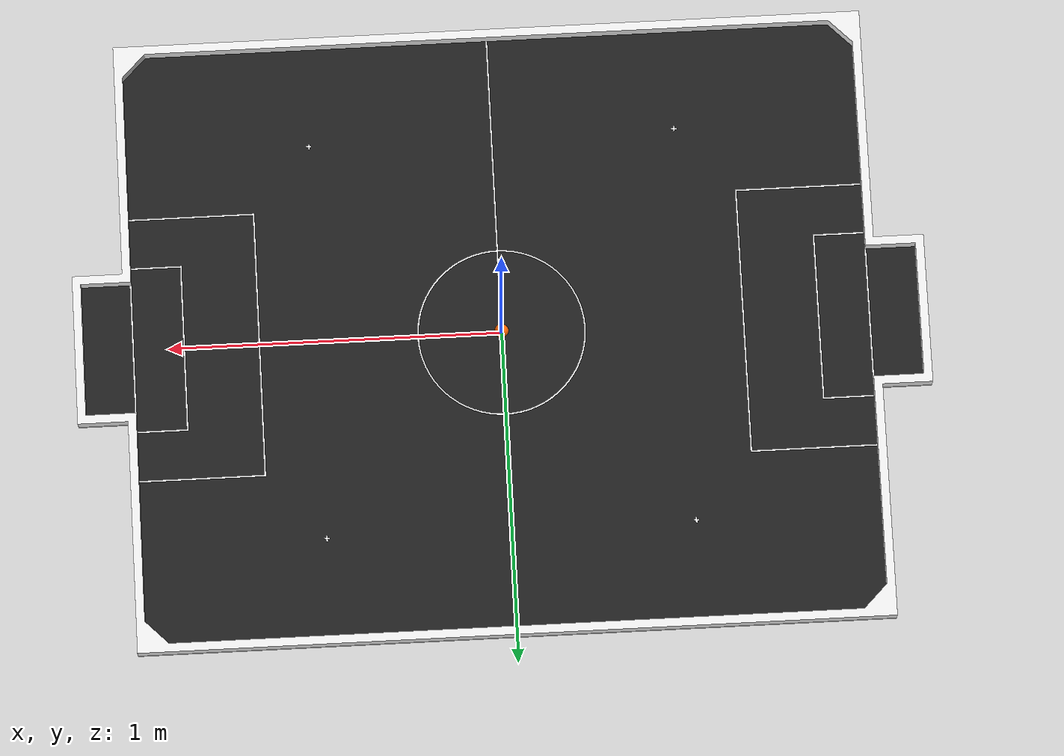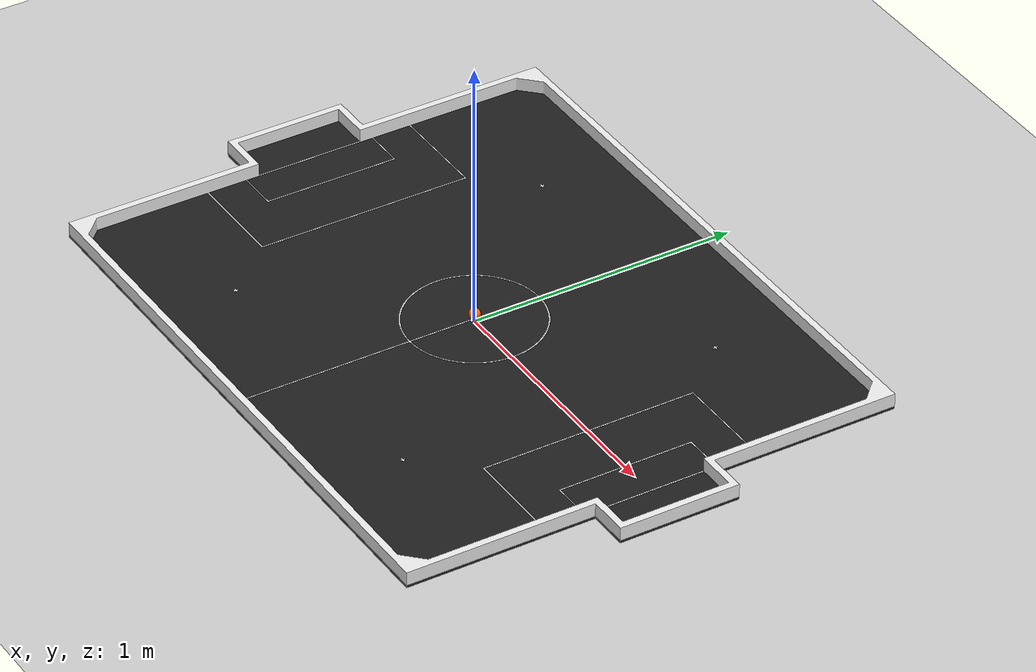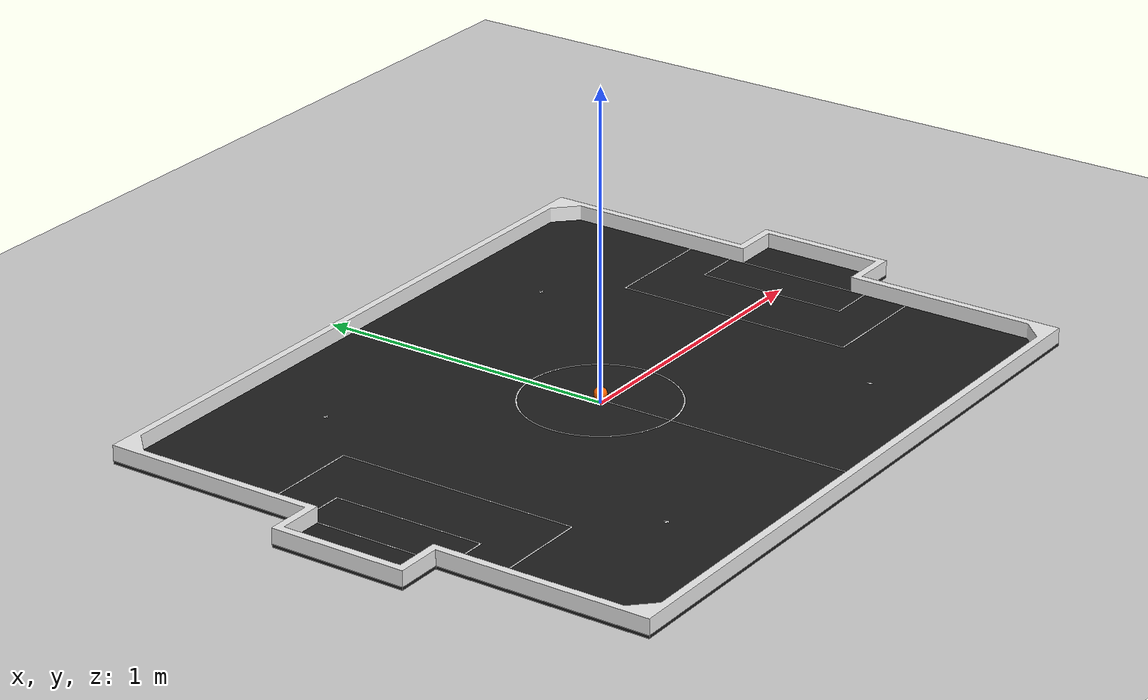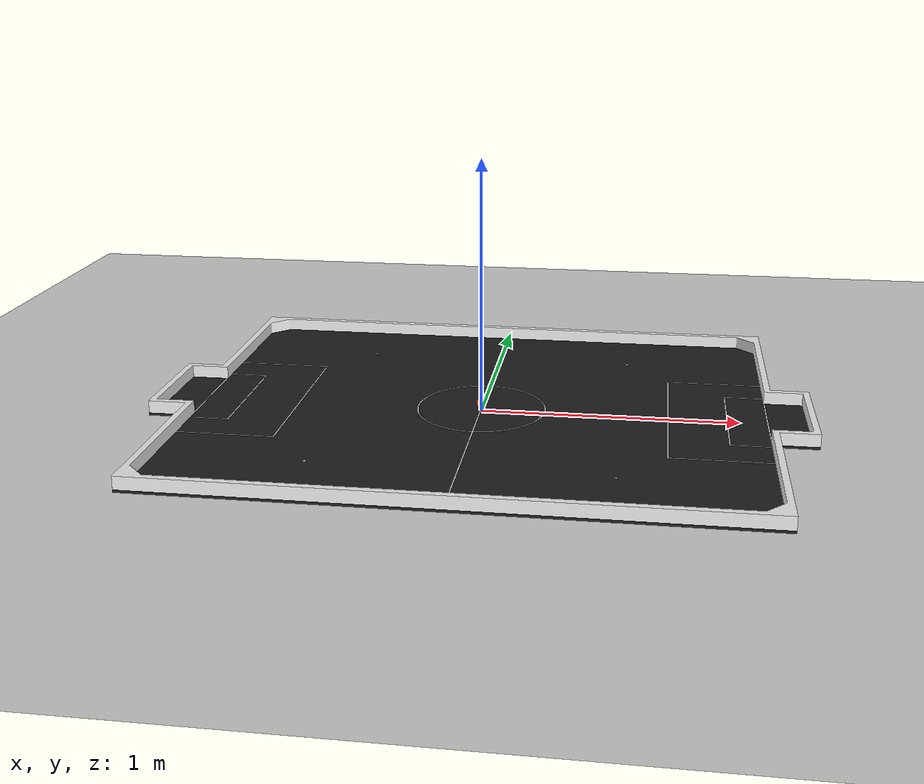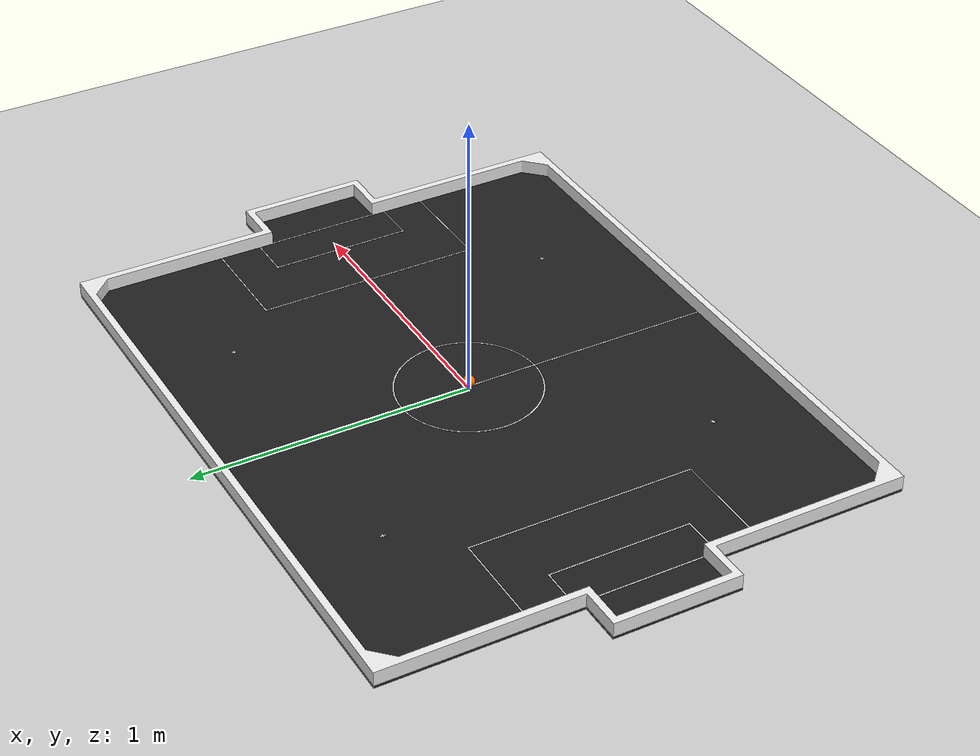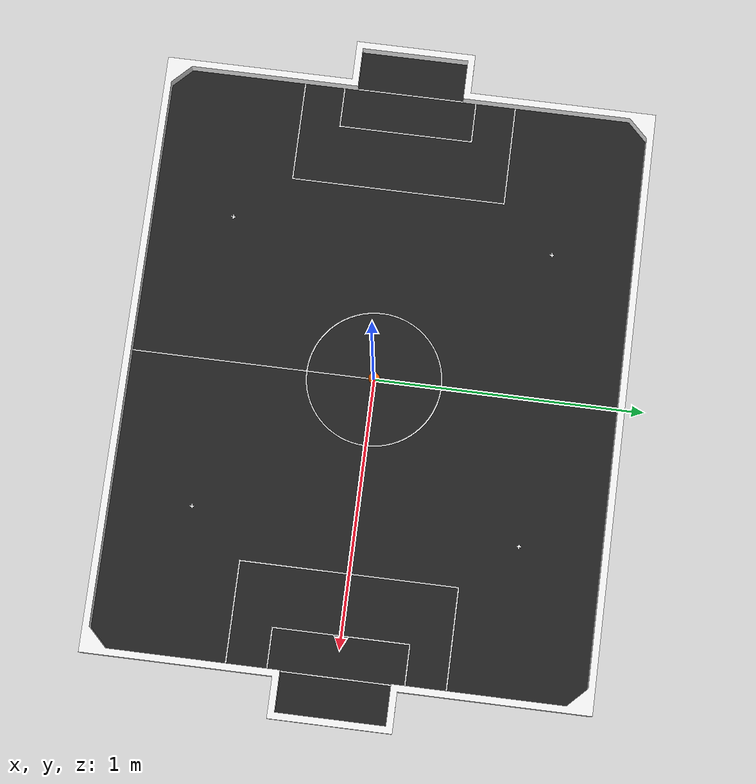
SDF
<?xml version="1.0" ?>

<!-- Simple world with vss field and ball
  Ref:
  https://github.com/osrf/gazebo/blob/gazebo11/worlds/robocup09_spl_field.world -->

<!-- Isometric view version -->

<sdf version="1.5">
  <world name="default">
    <!-- A global light source -->
    <include>
      <uri>model://sun</uri>
    </include>

    <!-- A ground plane -->
    <include>
      <uri>model://ground_plane</uri>
    </include>

    <!-- VSS Field -->
    <include>
      <pose>0 0 0.01 0 0 0</pose>
      <uri>model://vss_field_5</uri>
    </include>

    <!-- VSS ball -->
    <include>
      <pose>0 0 0.0315 0 0 0</pose>
      <uri>model://vss_ball</uri>
    </include>

    <physics type='ode'>
      <real_time_factor>0.5</real_time_factor>
    </physics>

    <!-- Configure camera angles for isometric view -->
    <gui fullscreen='0'>
      <camera name='user_camera'>
        <pose frame=''>0 0 0 0 0.565472 2.35619</pose>
        <view_controller>ortho</view_controller>
        <projection_type>orthographic</projection_type>
      </camera>
    </gui>
  </world>
</sdf>

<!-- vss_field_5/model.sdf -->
<!-- Physical parameters (contact properties) taken from
https://bitbucket.org/osrf/gazebo/src/gazebo11/models/ground_plane/model.sdf -->

<sdf version="1.5">
  <model name='vss_field'>

    <static>true</static>

    <link name='base_link'>
      <pose frame=''>0 0 0 0 0 0</pose>

      <collision name='base_link_collision'>
        <pose>0 0 -0.005 0 0 0</pose>
        <geometry>
          <box>
            <size>2.55 1.85 0.01</size>
          </box>
        </geometry>
        <surface>
          <friction>
            <ode>
              <mu>0.6</mu>
              <mu2>0.6</mu2>
            </ode>
            <torsional>
              <ode/>
            </torsional>
          </friction>
          <bounce/>
        </surface>
        <max_contacts>20</max_contacts>
      </collision>
      <collision name='laterais_link_collision'>
        <pose frame=''>0 0 0 0 0 0</pose>
        <geometry>
          <mesh>
            <scale>1 1 1</scale>
            <uri>model://vss_field_5/meshes/laterais_link.stl</uri>
          </mesh>
        </geometry>
      </collision>

      <visual name='base_link_visual'>
        <pose frame=''>0 0 0 0 0 0</pose>
        <geometry>
          <mesh>
            <scale>1 1 1</scale>
            <uri>model://vss_field_5/meshes/base_link.stl</uri>
          </mesh>
        </geometry>
        <material>
          <script>
            <name>Gazebo/Black</name>
            <uri>file://media/materials/scripts/gazebo.material</uri>
          </script>
        </material>
      </visual>

      <visual name='marcas_campo_visual'>
        <pose frame=''>0 0 0.0001 0 0 0</pose>
        <geometry>
          <mesh>
            <scale>1 1 1</scale>
            <uri>model://vss_field_5/meshes/marcas_campo.stl</uri>
          </mesh>
        </geometry>
        <material>
          <script>
            <name>Gazebo/White</name>
            <uri>file://media/materials/scripts/gazebo.material</uri>
          </script>
        </material>
      </visual>

      <visual name='laterais_link_visual'>
        <pose frame=''>0 0 0 0 0 0</pose>
        <geometry>
          <mesh>
            <scale>1 1 1</scale>
            <uri>model://vss_field_5/meshes/laterais_link.stl</uri>
          </mesh>
        </geometry>
        <material>
          <script>
            <name>Gazebo/White</name>
            <uri>file://media/materials/scripts/gazebo.material</uri>
          </script>
        </material>
      </visual>

    </link>

  </model>
</sdf>

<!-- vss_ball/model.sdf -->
<!-- File generated with Gazebo Model Editor
Proprieties according to IEEE 3x3 rules -->

<sdf version="1.5">
  <model name='vss_ball'>

    <link name='sphere'>
      <inertial>
        <mass>0.046</mass>
        <inertia>
          <!-- inertia based on solid sphere 2/5 mr^2 -->
          <ixx>2.935e-05</ixx>
          <iyy>2.935e-05</iyy>
          <izz>2.935e-05</izz>
          <ixy>0</ixy>
          <ixz>0</ixz>
          <iyz>0</iyz>
        </inertia>
        <pose frame=''>0 0 0 0 0 0</pose>
      </inertial>

      <pose frame=''>0 0 0 0 0 0</pose>
      <gravity>1</gravity>
      <self_collide>0</self_collide>
      <kinematic>0</kinematic>
      <enable_wind>0</enable_wind>

      <visual name='visual'>
        <pose frame=''>0 0 0 0 0 0</pose>
        <geometry>
          <sphere>
            <radius>0.02135</radius>
          </sphere>
        </geometry>
        <material>
          <ambient>1 .4 0 1</ambient>
          <diffuse>1 .4 0 1</diffuse>
          <specular>.1 .1 .1 1</specular>
        </material>
        <transparency>0</transparency>
        <cast_shadows>0</cast_shadows>
      </visual>

      <collision name='collision'>
        <laser_retro>0</laser_retro>
        <max_contacts>10</max_contacts>
        <pose frame=''>0 0 0 0 0 0</pose>
        <geometry>
          <sphere>
            <radius>0.02135</radius>
          </sphere>
        </geometry>
        <surface>
          <friction>
            <ode>
              <mu>0.1</mu>
              <mu2>0.1</mu2>
            </ode>
            <torsional>
              <coefficient>1</coefficient>
              <patch_radius>0</patch_radius>
              <surface_radius>0</surface_radius>
              <use_patch_radius>1</use_patch_radius>
            </torsional>
          </friction>
          <bounce>
            <restitution_coefficient>0.9</restitution_coefficient>
            <threshold>1e+06</threshold>
          </bounce>
          <contact>
            <collide_without_contact>0</collide_without_contact>
            <collide_without_contact_bitmask>1</collide_without_contact_bitmask>
            <collide_bitmask>1</collide_bitmask>
            <ode>
              <soft_cfm>0</soft_cfm>
              <soft_erp>0.2</soft_erp>
              <kp>1e+13</kp>
              <kd>1</kd>
              <max_vel>10</max_vel>
              <min_depth>0</min_depth>
            </ode>
          </contact>
        </surface>
      </collision>
    </link>
    <static>0</static>
    <allow_auto_disable>1</allow_auto_disable>
  </model>
</sdf>
